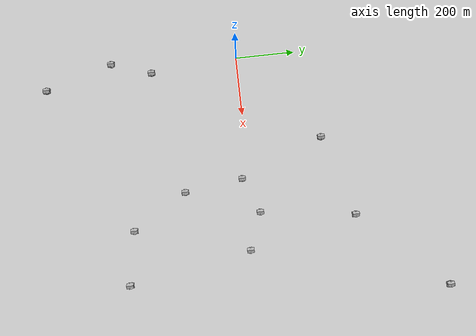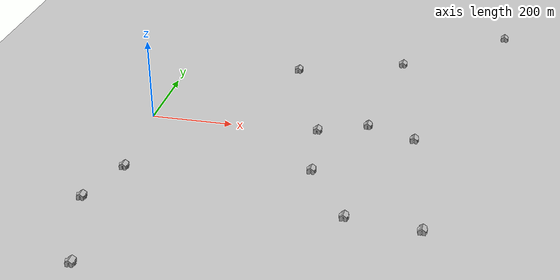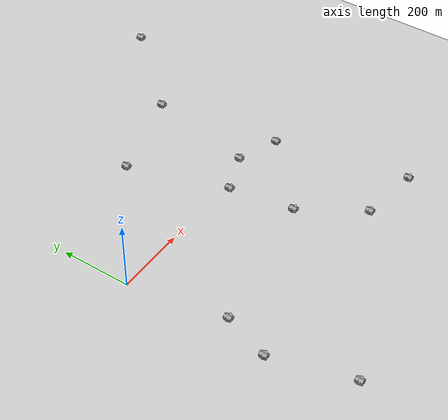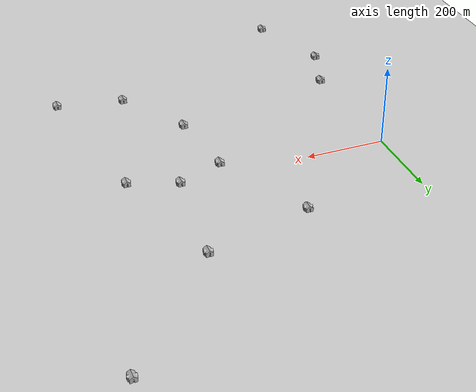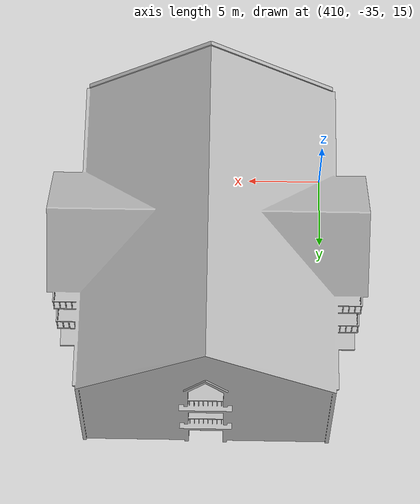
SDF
<sdf version="1.7">
 <world name="default">
  <physics type="ode">
   <ode>
    <solver>
     <type>quick</type>
     <iters>100</iters>
     <sor>1</sor>
     <use_dynamic_moi_rescaling>0</use_dynamic_moi_rescaling>
    </solver>
    <constraints>
     <cfm>0</cfm>
     <erp>0.9</erp>
     <contact_max_correcting_vel>0.1</contact_max_correcting_vel>
     <contact_surface_layer>0</contact_surface_layer>
    </constraints>
   </ode>
   <real_time_update_rate>-1</real_time_update_rate>
   <max_step_size>0.001</max_step_size>
   <real_time_factor>1</real_time_factor>
  </physics>
  <model name="ground_plane">
   <static>1</static>
   <link name="link">
    <collision name="collision">
     <geometry><plane><normal>0 0 1</normal><size>5000 5000</size></plane></geometry>
     <surface><friction><ode><mu>1</mu><mu2>1</mu2></ode></friction></surface>
    </collision>
    <visual name="runway">
     <pose>0 0 0.005 0 -0 0</pose>
     <cast_shadows>0</cast_shadows>
     <geometry><plane><normal>0 0 1</normal><size>1829 45</size></plane></geometry>
     <material>
      <script><uri>file://media/materials/scripts/gazebo.material</uri><name>Gazebo/Runway</name></script>
     </material>
    </visual>
    <visual name="grass">
     <pose>0 0 -0.1 0 -0 0</pose>
     <cast_shadows>0</cast_shadows>
     <geometry><plane><normal>0 0 1</normal><size>5000 5000</size></plane></geometry>
     <material>
      <script><uri>file://media/materials/scripts/gazebo.material</uri><name>Gazebo/Grass</name></script>
     </material>
    </visual>
   </link>
  </model>
  <light name="sun" type="directional">
   <pose>0 0 10 0 -0 0</pose>
   <diffuse>0.8 0.8 0.8 1</diffuse>
   <specular>0.2 0.2 0.2 1</specular>
   <attenuation>
    <range>1000</range>
    <constant>0.9</constant>
    <linear>0.01</linear>
    <quadratic>0.001</quadratic>
   </attenuation>
   <direction>-0.5 0.1 -0.9</direction>
   <spot><inner_angle>0</inner_angle><outer_angle>0</outer_angle><falloff>0</falloff></spot>
  </light>
  <gravity>0 0 -9.8</gravity>
  <magnetic_field>6e-06 2.3e-05 -4.2e-05</magnetic_field>
  <atmosphere type="adiabatic"/>
  <scene><ambient>0.4 0.4 0.4 1</ambient><background>0.7 0.7 0.7 1</background><shadows>1</shadows></scene>
  <spherical_coordinates>
   <surface_model>EARTH_WGS84</surface_model>
   <latitude_deg>0</latitude_deg>
   <longitude_deg>0</longitude_deg>
   <elevation>0</elevation>
   <heading_deg>0</heading_deg>
  </spherical_coordinates>
  <model name="apartment">
   <static>1</static>
   <link name="link">
    <collision name="collision">
     <geometry><mesh><uri>model://apartment/meshes/apartment.dae</uri></mesh></geometry>
    </collision>
    <visual name="visual">
     <geometry><mesh><uri>model://apartment/meshes/apartment.dae</uri></mesh></geometry>
    </visual>
   </link>
   <pose>417.715 -25.3445 17.3183 0 -0 0</pose>
  </model>
  <model name="apartment_0">
   <static>1</static>
   <link name="link">
    <collision name="collision">
     <geometry><mesh><uri>model://apartment/meshes/apartment.dae</uri></mesh></geometry>
    </collision>
    <visual name="visual">
     <geometry><mesh><uri>model://apartment/meshes/apartment.dae</uri></mesh></geometry>
    </visual>
   </link>
   <pose>531.251 20.0123 17.7001 0 -0 0</pose>
  </model>
  <model name="apartment_1">
   <static>1</static>
   <link name="link">
    <collision name="collision">
     <geometry><mesh><uri>model://apartment/meshes/apartment.dae</uri></mesh></geometry>
    </collision>
    <visual name="visual">
     <geometry><mesh><uri>model://apartment/meshes/apartment.dae</uri></mesh></geometry>
    </visual>
   </link>
   <pose>647.555 -24.2948 16.8842 0 -0 0</pose>
  </model>
  <model name="apartment_2">
   <static>1</static>
   <link name="link">
    <collision name="collision">
     <geometry><mesh><uri>model://apartment/meshes/apartment.dae</uri></mesh></geometry>
    </collision>
    <visual name="visual">
     <geometry><mesh><uri>model://apartment/meshes/apartment.dae</uri></mesh></geometry>
    </visual>
   </link>
   <pose>32.411 -286.082 26.6696 0 -0 0</pose>
  </model>
  <model name="apartment_3">
   <static>1</static>
   <link name="link">
    <collision name="collision">
     <geometry><mesh><uri>model://apartment/meshes/apartment.dae</uri></mesh></geometry>
    </collision>
    <visual name="visual">
     <geometry><mesh><uri>model://apartment/meshes/apartment.dae</uri></mesh></geometry>
    </visual>
   </link>
   <pose>-14.1591 -418.424 23.9246 0 -0 0</pose>
  </model>
  <model name="apartment_4">
   <static>1</static>
   <link name="link">
    <collision name="collision">
     <geometry><mesh><uri>model://apartment/meshes/apartment.dae</uri></mesh></geometry>
    </collision>
    <visual name="visual">
     <geometry><mesh><uri>model://apartment/meshes/apartment.dae</uri></mesh></geometry>
    </visual>
   </link>
   <pose>52.0595 -639.733 17.2053 0 -0 0</pose>
  </model>
  <model name="apartment_5">
   <static>1</static>
   <link name="link">
    <collision name="collision">
     <geometry><mesh><uri>model://apartment/meshes/apartment.dae</uri></mesh></geometry>
    </collision>
    <visual name="visual">
     <geometry><mesh><uri>model://apartment/meshes/apartment.dae</uri></mesh></geometry>
    </visual>
   </link>
   <pose>442.359 -211.805 20.8059 0 -0 0</pose>
  </model>
  <model name="apartment_6">
   <static>1</static>
   <link name="link">
    <collision name="collision">
     <geometry><mesh><uri>model://apartment/meshes/apartment.dae</uri></mesh></geometry>
    </collision>
    <visual name="visual">
     <geometry><mesh><uri>model://apartment/meshes/apartment.dae</uri></mesh></geometry>
    </visual>
   </link>
   <pose>547.398 -383.124 22.3981 0 -0 0</pose>
  </model>
  <model name="apartment_7">
   <static>1</static>
   <link name="link">
    <collision name="collision">
     <geometry><mesh><uri>model://apartment/meshes/apartment.dae</uri></mesh></geometry>
    </collision>
    <visual name="visual">
     <geometry><mesh><uri>model://apartment/meshes/apartment.dae</uri></mesh></geometry>
    </visual>
   </link>
   <pose>713.338 -407.449 26.384 0 -0 0</pose>
  </model>
  <model name="apartment_8">
   <static>1</static>
   <link name="link">
    <collision name="collision">
     <geometry><mesh><uri>model://apartment/meshes/apartment.dae</uri></mesh></geometry>
    </collision>
    <visual name="visual">
     <geometry><mesh><uri>model://apartment/meshes/apartment.dae</uri></mesh></geometry>
    </visual>
   </link>
   <pose>313.546 242.501 37.5272 0 -0 0</pose>
  </model>
  <model name="apartment_9">
   <static>1</static>
   <link name="link">
    <collision name="collision">
     <geometry><mesh><uri>model://apartment/meshes/apartment.dae</uri></mesh></geometry>
    </collision>
    <visual name="visual">
     <geometry><mesh><uri>model://apartment/meshes/apartment.dae</uri></mesh></geometry>
    </visual>
   </link>
   <pose>573.608 315.99 42.6651 0 -0 0</pose>
  </model>
  <model name="apartment_10">
   <static>1</static>
   <link name="link">
    <collision name="collision">
     <geometry><mesh><uri>model://apartment/meshes/apartment.dae</uri></mesh></geometry>
    </collision>
    <visual name="visual">
     <geometry><mesh><uri>model://apartment/meshes/apartment.dae</uri></mesh></geometry>
    </visual>
   </link>
   <pose>820.283 581.29 19.1066 0 -0 0</pose>
  </model>
 </world>
</sdf>
